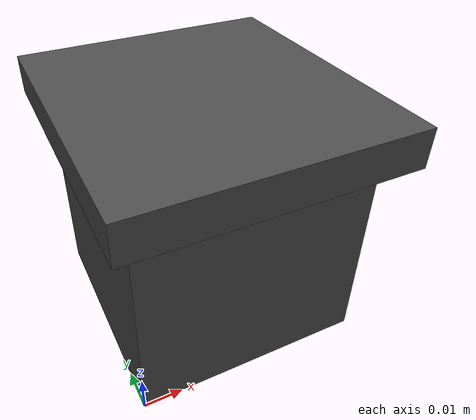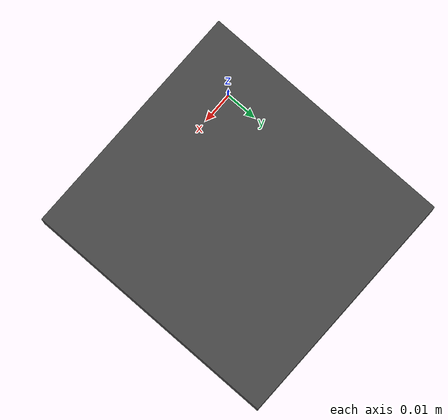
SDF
<?xml version='1.0'?>
<sdf version='1.7'>
  <model name='cube'>
    <link name='link1'>
      <inertial>
        <pose>0.03 0.03 0.03 0 -0 0</pose>
        <!--NOTE: Uses Polyethylene density to calculate the mass
        see https://en.wikipedia.org/wiki/Polyethylene
        -->
        <mass>0.735999999999996</mass>
        <inertia>
          <ixx>0.00012442</ixx>
          <ixy>0</ixy>
          <ixz>0</ixz>
          <iyy>0.00012442</iyy>
          <iyz>0</iyz>
          <izz>0.00012442</izz>
        </inertia>
      </inertial>
      <visual name='visual'>
        <pose>0.03 0.03 0.03 0 -0 0</pose>
        <geometry>
          <box>
            <size>0.06 0.06 0.06</size>
          </box>
        </geometry>
        <material>
          <script>
            <uri>file://media/materials/scripts/gazebo.material</uri>
            <name>Gazebo/DarkGrey</name>
          </script>
          <shader type='pixel'/>
        </material>
      </visual>
      <collision name='collision'>
        <max_contacts>10</max_contacts>
        <pose>0.03 0.03 0.03 0 -0 0</pose>
        <geometry>
          <box>
            <size>0.06 0.06 0.06</size>
          </box>
        </geometry>
        <surface>
          <!--NOTE: Used dynamic friction of clean dry plastic cube on a plastic surface
          (i.e. Polyethylene) see https://www.engineeringtoolbox.com/friction-coefficients-d_778.html
          -->
          <friction>
            <ode>
              <mu>1</mu>
              <mu2>1</mu2>
            </ode>
          </friction>
          <contact>
            <collide_bitmask>1</collide_bitmask>
            <ode>
              <kp>1e+06</kp>
              <kd>1e+06</kd>
              <max_vel>1</max_vel>
              <min_depth>0.002</min_depth>
            </ode>
            <bullet>
              <kp>1e+06</kp>
              <kd>1e+06</kd>
            </bullet>
          </contact>
        </surface>
      </collision>
    </link>
    <link name='link2'>
      <inertial>
        <pose>0.03 0.03 0.06 0 -0 0</pose>
        <!--NOTE: Uses Polyethylene density to calculate the mass
        see https://en.wikipedia.org/wiki/Polyethylene
        -->
        <mass>0.735999999999996</mass>
        <inertia>
          <ixx>0.00012442</ixx>
          <ixy>0</ixy>
          <ixz>0</ixz>
          <iyy>0.00012442</iyy>
          <iyz>0</iyz>
          <izz>0.00012442</izz>
        </inertia>
      </inertial>
      <visual name='visual'>
        <pose>0.03 0.03 0.06 0 -0 0</pose>
        <geometry>
          <box>
            <size>0.07 0.075 0.01</size>
          </box>
        </geometry>
        <material>
          <script>
            <uri>file://media/materials/scripts/gazebo.material</uri>
            <name>Gazebo/DarkGrey</name>
          </script>
          <shader type='pixel'/>
        </material>
      </visual>
      <collision name='collision'>
        <max_contacts>20</max_contacts>
        <pose>0.03 0.03 0.06 0 -0 0</pose>
        <geometry>
          <box>
            <size>0.07 0.075 0.01</size>
          </box>
        </geometry>
        <surface>
          <!--NOTE: Used dynamic friction of clean dry plastic cube on a plastic surface
          (i.e. Polyethylene) see https://www.engineeringtoolbox.com/friction-coefficients-d_778.html
          -->
          <friction>
            <ode>
              <mu>1000</mu>
              <mu2>1000</mu2>
            </ode>
          </friction>
          <contact>
            <collide_bitmask>1</collide_bitmask>
            <ode>
              <kp>1e+06</kp>
              <kd>1e+06</kd>
              <max_vel>1</max_vel>
              <min_depth>0.002</min_depth>
            </ode>
            <bullet>
              <kp>1e+06</kp>
              <kd>1e+06</kd>
            </bullet>
          </contact>
        </surface>
      </collision>
    </link>
    <joint name='link_0_JOINT_0' type='fixed'>
      <parent>link1</parent>
      <child>link2</child>
      <pose>0 0 0 0 -0 0</pose>
      <physics>
        <ode>
          <limit>
            <cfm>0</cfm>
            <erp>0.2</erp>
          </limit>
          <suspension>
            <cfm>0</cfm>
            <erp>0.2</erp>
          </suspension>
        </ode>
      </physics>
    </joint>
  </model>
</sdf>
